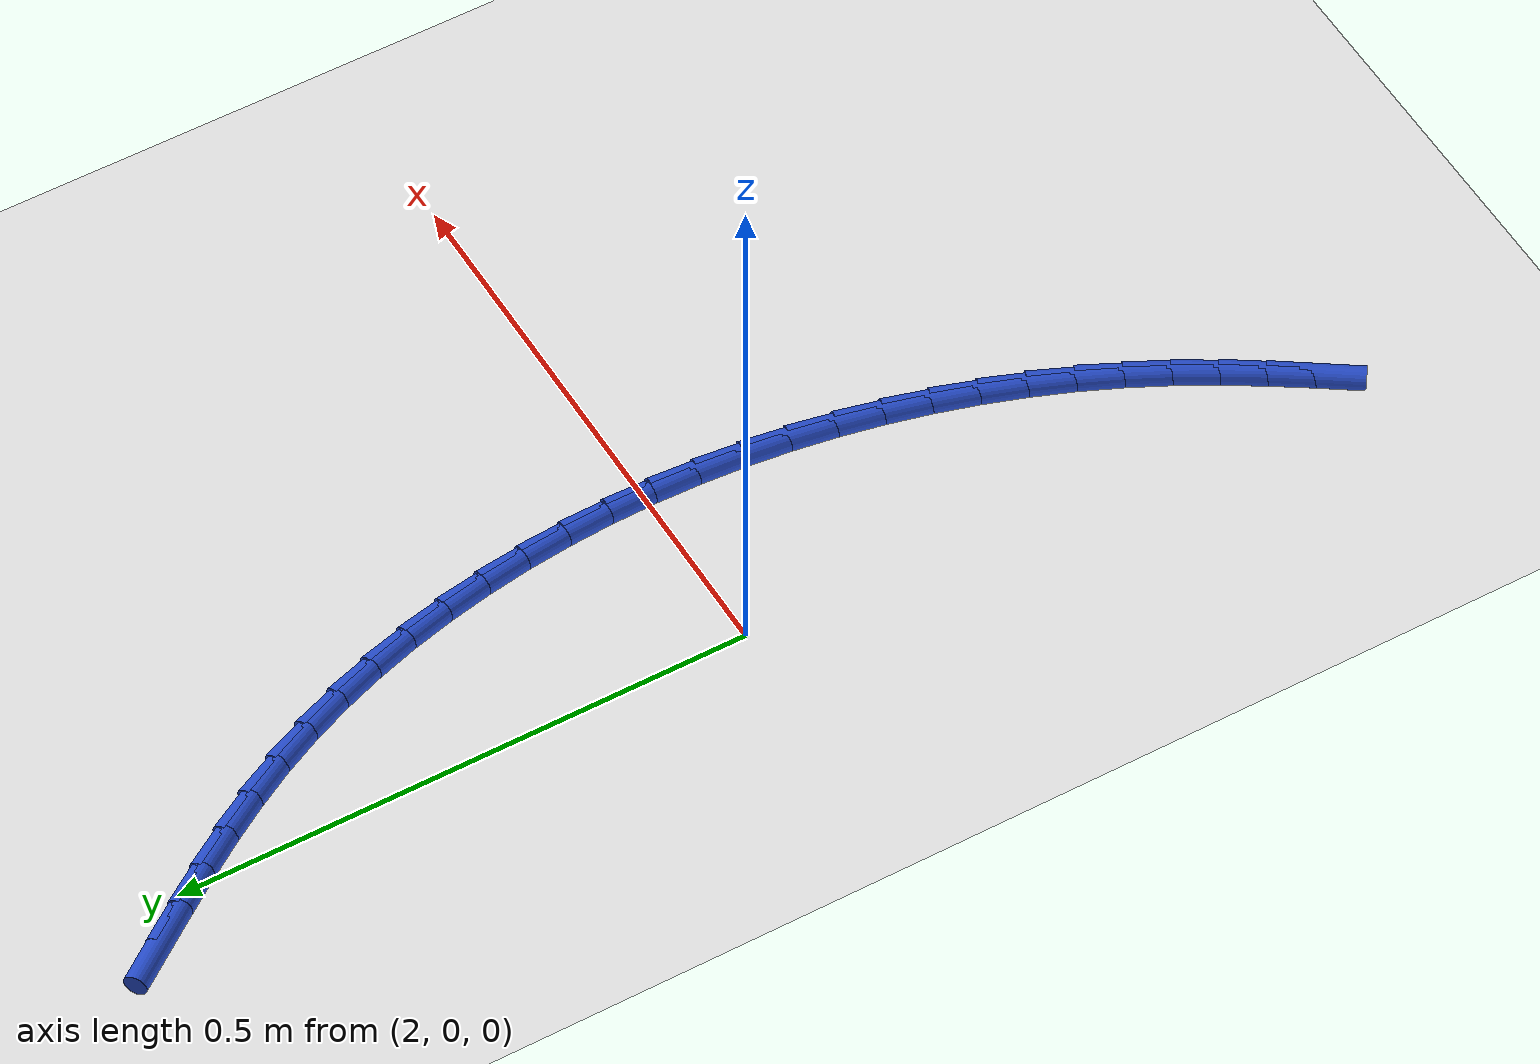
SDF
<sdf version="1.6">
 <world name="default">
  <model name="ground_plane">
   <static>1</static>
   <link name="link">
    <collision name="collision">
     <geometry><plane><normal>0 0 1</normal><size>100 100</size></plane></geometry>
     <surface><friction><ode><mu>100</mu><mu2>50</mu2></ode></friction></surface>
    </collision>
    <visual name="visual">
     <cast_shadows>0</cast_shadows>
     <geometry><plane><normal>0 0 1</normal><size>100 100</size></plane></geometry>
     <material>
      <script><uri>file://media/materials/scripts/gazebo.material</uri><name>Gazebo/WhiteGlow</name></script>
     </material>
    </visual>
   </link>
  </model>
  <model name="line">
   <link name="link_75">
    <pose>1.9587753310733191 0.5381964062433853 0.01 0 1.57 -0.9373331607517976</pose>
    <collision name="collision">
     <geometry><cylinder><radius>0.01</radius><length>0.08</length></cylinder></geometry>
    </collision>
    <visual name="visual">
     <material>
      <script><name>Gazebo/Blue</name><uri>file://media/materials/scripts/gazebo.material</uri></script>
     </material>
     <geometry><cylinder><radius>0.01</radius><length>0.08</length></cylinder></geometry>
    </visual>
   </link>
   <link name="link_76">
    <pose>1.9817047835143666 0.5069757619722548 0.01 0 1.57 -0.9515091542326454</pose>
    <collision name="collision">
     <geometry><cylinder><radius>0.01</radius><length>0.08</length></cylinder></geometry>
    </collision>
    <visual name="visual">
     <material>
      <script><name>Gazebo/Blue</name><uri>file://media/materials/scripts/gazebo.material</uri></script>
     </material>
     <geometry><cylinder><radius>0.01</radius><length>0.08</length></cylinder></geometry>
    </visual>
   </link>
   <link name="link_77">
    <pose>2.004095714457862 0.47556459319332045 0.01 0 1.57 -0.9759076475280166</pose>
    <collision name="collision">
     <geometry><cylinder><radius>0.01</radius><length>0.08</length></cylinder></geometry>
    </collision>
    <visual name="visual">
     <material>
      <script><name>Gazebo/Blue</name><uri>file://media/materials/scripts/gazebo.material</uri></script>
     </material>
     <geometry><cylinder><radius>0.01</radius><length>0.08</length></cylinder></geometry>
    </visual>
   </link>
   <link name="link_78">
    <pose>2.0256448436568846 0.4437182404693811 0.01 0 1.57 -1.0105367489064634</pose>
    <collision name="collision">
     <geometry><cylinder><radius>0.01</radius><length>0.08</length></cylinder></geometry>
    </collision>
    <visual name="visual">
     <material>
      <script><name>Gazebo/Blue</name><uri>file://media/materials/scripts/gazebo.material</uri></script>
     </material>
     <geometry><cylinder><radius>0.01</radius><length>0.08</length></cylinder></geometry>
    </visual>
   </link>
   <link name="link_79">
    <pose>2.04604889086451 0.41119204436323403 0.01 0 1.57 -1.0552407817311305</pose>
    <collision name="collision">
     <geometry><cylinder><radius>0.01</radius><length>0.08</length></cylinder></geometry>
    </collision>
    <visual name="visual">
     <material>
      <script><name>Gazebo/Blue</name><uri>file://media/materials/scripts/gazebo.material</uri></script>
     </material>
     <geometry><cylinder><radius>0.01</radius><length>0.08</length></cylinder></geometry>
    </visual>
   </link>
   <link name="link_80">
    <pose>2.0650045758338154 0.3777413454376769 0.01 0 1.57 -1.1088319563055218</pose>
    <collision name="collision">
     <geometry><cylinder><radius>0.01</radius><length>0.08</length></cylinder></geometry>
    </collision>
    <visual name="visual">
     <material>
      <script><name>Gazebo/Blue</name><uri>file://media/materials/scripts/gazebo.material</uri></script>
     </material>
     <geometry><cylinder><radius>0.01</radius><length>0.08</length></cylinder></geometry>
    </visual>
   </link>
   <link name="link_81">
    <pose>2.0822292402647444 0.34314656067190424 0.01 0 1.57 -1.163944920681932</pose>
    <collision name="collision">
     <geometry><cylinder><radius>0.01</radius><length>0.08</length></cylinder></geometry>
    </collision>
    <visual name="visual">
     <material>
      <script><name>Gazebo/Blue</name><uri>file://media/materials/scripts/gazebo.material</uri></script>
     </material>
     <geometry><cylinder><radius>0.01</radius><length>0.08</length></cylinder></geometry>
    </visual>
   </link>
   <link name="link_82">
    <pose>2.0976260944583047 0.30741412442677196 0.01 0 1.57 -1.2170033602918657</pose>
    <collision name="collision">
     <geometry><cylinder><radius>0.01</radius><length>0.08</length></cylinder></geometry>
    </collision>
    <visual name="visual">
     <material>
      <script><name>Gazebo/Blue</name><uri>file://media/materials/scripts/gazebo.material</uri></script>
     </material>
     <geometry><cylinder><radius>0.01</radius><length>0.08</length></cylinder></geometry>
    </visual>
   </link>
   <link name="link_83">
    <pose>2.1111968252769664 0.27067021917792844 0.01 0 1.57 -1.2681919873966485</pose>
    <collision name="collision">
     <geometry><cylinder><radius>0.01</radius><length>0.08</length></cylinder></geometry>
    </collision>
    <visual name="visual">
     <material>
      <script><name>Gazebo/Blue</name><uri>file://media/materials/scripts/gazebo.material</uri></script>
     </material>
     <geometry><cylinder><radius>0.01</radius><length>0.08</length></cylinder></geometry>
    </visual>
   </link>
   <link name="link_84">
    <pose>2.1229440199665746 0.2330421222728375 0.01 0 1.57 -1.3177429510259306</pose>
    <collision name="collision">
     <geometry><cylinder><radius>0.01</radius><length>0.08</length></cylinder></geometry>
    </collision>
    <visual name="visual">
     <material>
      <script><name>Gazebo/Blue</name><uri>file://media/materials/scripts/gazebo.material</uri></script>
     </material>
     <geometry><cylinder><radius>0.01</radius><length>0.08</length></cylinder></geometry>
    </visual>
   </link>
   <link name="link_85">
    <pose>2.132870265772972 0.19465711105896188 0.01 0 1.57 -1.3658964082267315</pose>
    <collision name="collision">
     <geometry><cylinder><radius>0.01</radius><length>0.08</length></cylinder></geometry>
    </collision>
    <visual name="visual">
     <material>
      <script><name>Gazebo/Blue</name><uri>file://media/materials/scripts/gazebo.material</uri></script>
     </material>
     <geometry><cylinder><radius>0.01</radius><length>0.08</length></cylinder></geometry>
    </visual>
   </link>
   <link name="link_86">
    <pose>2.140978149942003 0.15564246288376546 0.01 0 1.57 -1.412896460306759</pose>
    <collision name="collision">
     <geometry><cylinder><radius>0.01</radius><length>0.08</length></cylinder></geometry>
    </collision>
    <visual name="visual">
     <material>
      <script><name>Gazebo/Blue</name><uri>file://media/materials/scripts/gazebo.material</uri></script>
     </material>
     <geometry><cylinder><radius>0.01</radius><length>0.08</length></cylinder></geometry>
    </visual>
   </link>
   <link name="link_87">
    <pose>2.1472702597195115 0.11612545509471123 0.01 0 1.57 -1.458988611674432</pose>
    <collision name="collision">
     <geometry><cylinder><radius>0.01</radius><length>0.08</length></cylinder></geometry>
    </collision>
    <visual name="visual">
     <material>
      <script><name>Gazebo/Blue</name><uri>file://media/materials/scripts/gazebo.material</uri></script>
     </material>
     <geometry><cylinder><radius>0.01</radius><length>0.08</length></cylinder></geometry>
    </visual>
   </link>
   <link name="link_88">
    <pose>2.1517491823513413 0.07623336503926202 0.01 0 1.57 -1.5044184082559038</pose>
    <collision name="collision">
     <geometry><cylinder><radius>0.01</radius><length>0.08</length></cylinder></geometry>
    </collision>
    <visual name="visual">
     <material>
      <script><name>Gazebo/Blue</name><uri>file://media/materials/scripts/gazebo.material</uri></script>
     </material>
     <geometry><cylinder><radius>0.01</radius><length>0.08</length></cylinder></geometry>
    </visual>
   </link>
   <link name="link_89">
    <pose>2.1544175050833356 0.03609347006488196 0.01 0 1.57 -1.5494058028002868</pose>
    <collision name="collision">
     <geometry><cylinder><radius>0.01</radius><length>0.08</length></cylinder></geometry>
    </collision>
    <visual name="visual">
     <material>
      <script><name>Gazebo/Blue</name><uri>file://media/materials/scripts/gazebo.material</uri></script>
     </material>
     <geometry><cylinder><radius>0.01</radius><length>0.08</length></cylinder></geometry>
    </visual>
   </link>
   <link name="link_90">
    <pose>2.1552788466413904 -0.004167824329971389 0.01 0 1.57 1.5477274742445282</pose>
    <collision name="collision">
     <geometry><cylinder><radius>0.01</radius><length>0.08</length></cylinder></geometry>
    </collision>
    <visual name="visual">
     <material>
      <script><name>Gazebo/Blue</name><uri>file://media/materials/scripts/gazebo.material</uri></script>
     </material>
     <geometry><cylinder><radius>0.01</radius><length>0.08</length></cylinder></geometry>
    </visual>
   </link>
   <link name="link_91">
    <pose>2.1543497631818864 -0.04443504789070137 0.01 0 1.57 1.503820248179985</pose>
    <collision name="collision">
     <geometry><cylinder><radius>0.01</radius><length>0.08</length></cylinder></geometry>
    </collision>
    <visual name="visual">
     <material>
      <script><name>Gazebo/Blue</name><uri>file://media/materials/scripts/gazebo.material</uri></script>
     </material>
     <geometry><cylinder><radius>0.01</radius><length>0.08</length></cylinder></geometry>
    </visual>
   </link>
   <link name="link_92">
    <pose>2.1516556301665863 -0.08460018479929013 0.01 0 1.57 1.460283164392499</pose>
    <collision name="collision">
     <geometry><cylinder><radius>0.01</radius><length>0.08</length></cylinder></geometry>
    </collision>
    <visual name="visual">
     <material>
      <script><name>Gazebo/Blue</name><uri>file://media/materials/scripts/gazebo.material</uri></script>
     </material>
     <geometry><cylinder><radius>0.01</radius><length>0.08</length></cylinder></geometry>
    </visual>
   </link>
   <link name="link_93">
    <pose>2.147221992813884 -0.12455536272294392 0.01 0 1.57 1.416926217196085</pose>
    <collision name="collision">
     <geometry><cylinder><radius>0.01</radius><length>0.08</length></cylinder></geometry>
    </collision>
    <visual name="visual">
     <material>
      <script><name>Gazebo/Blue</name><uri>file://media/materials/scripts/gazebo.material</uri></script>
     </material>
     <geometry><cylinder><radius>0.01</radius><length>0.08</length></cylinder></geometry>
    </visual>
   </link>
   <link name="link_94">
    <pose>2.1410743963421703 -0.16419270932887126 0.01 0 1.57 1.3735557055828278</pose>
    <collision name="collision">
     <geometry><cylinder><radius>0.01</radius><length>0.08</length></cylinder></geometry>
    </collision>
    <visual name="visual">
     <material>
      <script><name>Gazebo/Blue</name><uri>file://media/materials/scripts/gazebo.material</uri></script>
     </material>
     <geometry><cylinder><radius>0.01</radius><length>0.08</length></cylinder></geometry>
    </visual>
   </link>
   <link name="link_95">
    <pose>2.1332383859698396 -0.20340435228428005 0.01 0 1.57 1.3299741830995393</pose>
    <collision name="collision">
     <geometry><cylinder><radius>0.01</radius><length>0.08</length></cylinder></geometry>
    </collision>
    <visual name="visual">
     <material>
      <script><name>Gazebo/Blue</name><uri>file://media/materials/scripts/gazebo.material</uri></script>
     </material>
     <geometry><cylinder><radius>0.01</radius><length>0.08</length></cylinder></geometry>
    </visual>
   </link>
   <link name="link_96">
    <pose>2.1237395069152836 -0.24208241925637816 0.01 0 1.57 1.285980319600134</pose>
    <collision name="collision">
     <geometry><cylinder><radius>0.01</radius><length>0.08</length></cylinder></geometry>
    </collision>
    <visual name="visual">
     <material>
      <script><name>Gazebo/Blue</name><uri>file://media/materials/scripts/gazebo.material</uri></script>
     </material>
     <geometry><cylinder><radius>0.01</radius><length>0.08</length></cylinder></geometry>
    </visual>
   </link>
   <link name="link_97">
    <pose>2.112603304396896 -0.2801190379123733 0.01 0 1.57 1.2413688086549268</pose>
    <collision name="collision">
     <geometry><cylinder><radius>0.01</radius><length>0.08</length></cylinder></geometry>
    </collision>
    <visual name="visual">
     <material>
      <script><name>Gazebo/Blue</name><uri>file://media/materials/scripts/gazebo.material</uri></script>
     </material>
     <geometry><cylinder><radius>0.01</radius><length>0.08</length></cylinder></geometry>
    </visual>
   </link>
   <link name="link_98">
    <pose>2.099855323633068 -0.31740633591947415 0.01 0 1.57 1.1959304695225348</pose>
    <collision name="collision">
     <geometry><cylinder><radius>0.01</radius><length>0.08</length></cylinder></geometry>
    </collision>
    <visual name="visual">
     <material>
      <script><name>Gazebo/Blue</name><uri>file://media/materials/scripts/gazebo.material</uri></script>
     </material>
     <geometry><cylinder><radius>0.01</radius><length>0.08</length></cylinder></geometry>
    </visual>
   </link>
   <link name="link_99">
    <pose>2.085521109842194 -0.353836440944887 0.01 0 1.57 1.1494527156915364</pose>
    <collision name="collision">
     <geometry><cylinder><radius>0.01</radius><length>0.08</length></cylinder></geometry>
    </collision>
    <visual name="visual">
     <material>
      <script><name>Gazebo/Blue</name><uri>file://media/materials/scripts/gazebo.material</uri></script>
     </material>
     <geometry><cylinder><radius>0.01</radius><length>0.08</length></cylinder></geometry>
    </visual>
   </link>
   <link name="link_100">
    <pose>2.0696262082426657 -0.3893014806558203 0.01 0 1.57 1.1017298962322646</pose>
    <collision name="collision">
     <geometry><cylinder><radius>0.01</radius><length>0.08</length></cylinder></geometry>
    </collision>
    <visual name="visual">
     <material>
      <script><name>Gazebo/Blue</name><uri>file://media/materials/scripts/gazebo.material</uri></script>
     </material>
     <geometry><cylinder><radius>0.01</radius><length>0.08</length></cylinder></geometry>
    </visual>
   </link>
   <link name="link_101">
    <pose>2.052196395508327 -0.4236939195280125 0.01 0 1.57 1.055462638631222</pose>
    <collision name="collision">
     <geometry><cylinder><radius>0.01</radius><length>0.08</length></cylinder></geometry>
    </collision>
    <visual name="visual">
     <material>
      <script><name>Gazebo/Blue</name><uri>file://media/materials/scripts/gazebo.material</uri></script>
     </material>
     <geometry><cylinder><radius>0.01</radius><length>0.08</length></cylinder></geometry>
    </visual>
   </link>
   <link name="link_102">
    <pose>2.033327665316407 -0.4570084001695148 0.01 0 1.57 1.0178579538428838</pose>
    <collision name="collision">
     <geometry><cylinder><radius>0.01</radius><length>0.08</length></cylinder></geometry>
    </collision>
    <visual name="visual">
     <material>
      <script><name>Gazebo/Blue</name><uri>file://media/materials/scripts/gazebo.material</uri></script>
     </material>
     <geometry><cylinder><radius>0.01</radius><length>0.08</length></cylinder></geometry>
    </visual>
   </link>
   <link name="link_103">
    <pose>2.0132846119126278 -0.4894849087713456 0.01 0 1.57 0.9903894404827764</pose>
    <collision name="collision">
     <geometry><cylinder><radius>0.01</radius><length>0.08</length></cylinder></geometry>
    </collision>
    <visual name="visual">
     <material>
      <script><name>Gazebo/Blue</name><uri>file://media/materials/scripts/gazebo.material</uri></script>
     </material>
     <geometry><cylinder><radius>0.01</radius><length>0.08</length></cylinder></geometry>
    </visual>
   </link>
   <link name="link_104">
    <pose>1.992356614966045 -0.5213994986897768 0.01 0 1.57 0.9732732256974157</pose>
    <collision name="collision">
     <geometry><cylinder><radius>0.01</radius><length>0.08</length></cylinder></geometry>
    </collision>
    <visual name="visual">
     <material>
      <script><name>Gazebo/Blue</name><uri>file://media/materials/scripts/gazebo.material</uri></script>
     </material>
     <geometry><cylinder><radius>0.01</radius><length>0.08</length></cylinder></geometry>
    </visual>
   </link>
  </model>
 </world>
</sdf>
